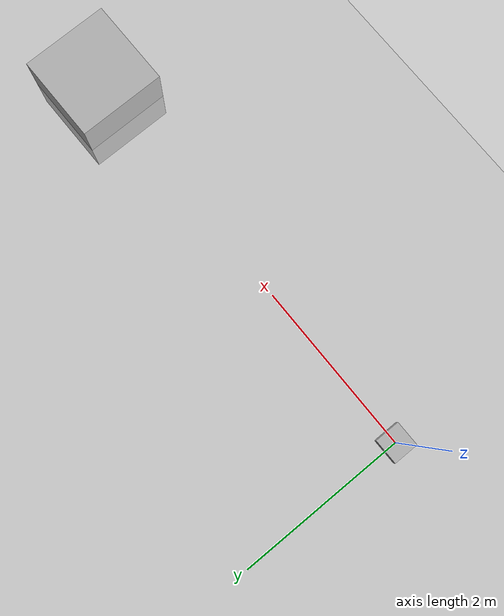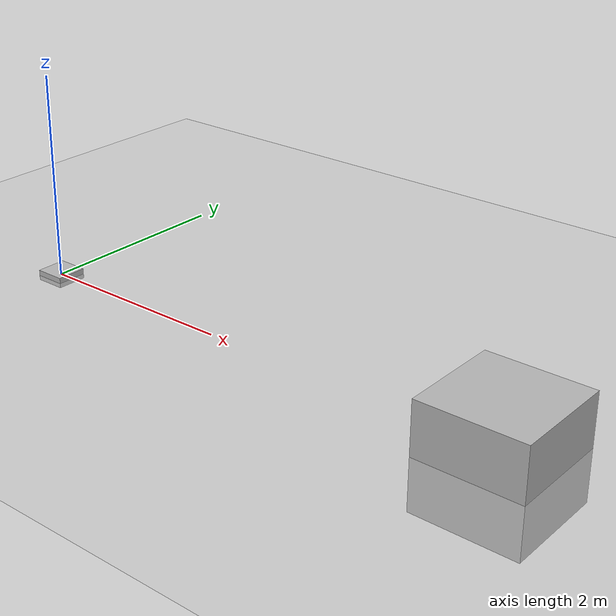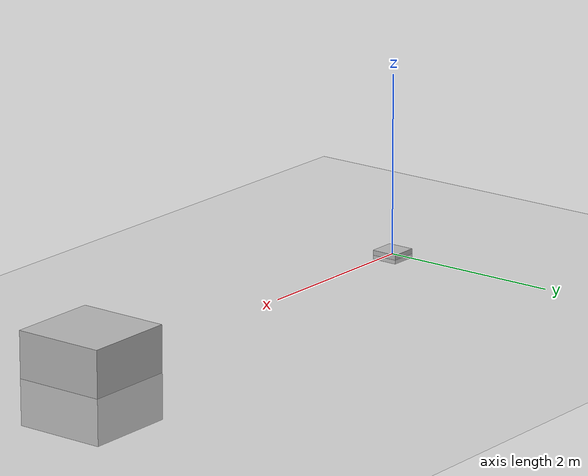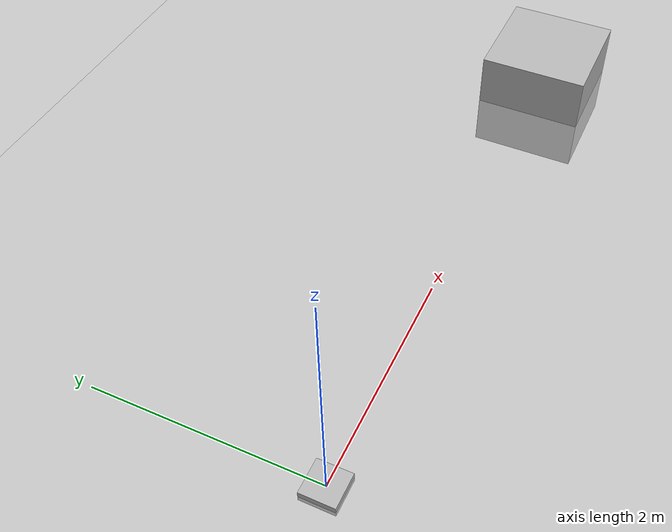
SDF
<?xml version="1.0" ?>
<sdf version="1.5">
  <world name="default">
    <!-- A global light source -->

    <scene>
	<ambient>0.0 0.0 0.0 1.0</ambient>
	<shadows>true</shadows>
    </scene>

    <include>
      <uri>model://sun</uri>
    </include>

    <!-- A ground plane -->
    <include>
      <uri>model://ground_plane</uri>
    </include>

    <!-- A box -->
    <model name="box">
      <link name="link">
        <pose>5 0 0 0 0 0</pose>

        <collision name="box_collision">
          <geometry>
            <box>
              <size>1 1 1</size>
            </box>
          </geometry>
        </collision>

        <visual name="visual">
          <geometry>
            <box>
              <size>1 1 1</size>
            </box>
          </geometry>
        </visual>
      </link>
    </model>

    <!-- A quadcopter -->
    <include>
      <name>abejorro</name>
      <uri>model://drone</uri>
      <pose>0 0 0 0 0 0</pose>

      <plugin name="model_push" filename="/opt/ros/jade/share/drone_gazebo/plugins/build/libmodel_push.so"> </plugin>

    </include>

  </world>
</sdf>

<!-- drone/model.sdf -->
<sdf version="1.9">
  <model name="drone">
    <pose>0 0 0.5 0 0 0</pose>
    <link name="base_link">
      <inertial>
        <mass>1.0</mass>
        <inertia>
          <ixx>0.002</ixx><iyy>0.002</iyy><izz>0.003</izz>
          <ixy>0</ixy><ixz>0</ixz><iyz>0</iyz>
        </inertia>
      </inertial>
      <collision name="col">
        <geometry><box><size>0.3 0.3 0.1</size></box></geometry>
      </collision>
      <visual name="vis">
        <geometry><box><size>0.3 0.3 0.1</size></box></geometry>
      </visual>
    </link>

    <plugin name="lin_vel" filename="gz-sim-linear-velocity-control-system">
      <topic>/model/drone/cmd_vel</topic>
      <use_world_frame>false</use_world_frame>
      <limit>3.0</limit>
    </plugin>
    <plugin name="ang_vel" filename="gz-sim-angular-velocity-control-system">
      <topic>/model/drone/cmd_vel</topic>
      <use_world_frame>false</use_world_frame>
      <limit>2.0</limit>
    </plugin>
    <plugin name="odom_pub" filename="gz-sim-odometry-publisher-system">
      <frame_id>world</frame_id>
      <child_frame_id>drone/base_link</child_frame_id>
      <topic>/model/drone/odometry</topic>
      <publish_velocity>true</publish_velocity>
    </plugin>
  </model>
</sdf>
